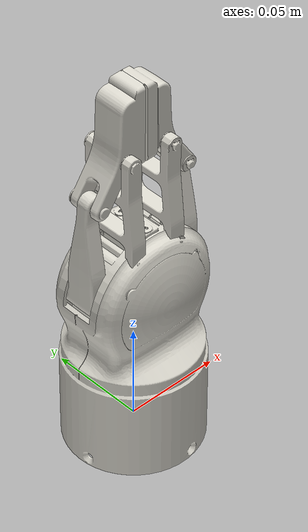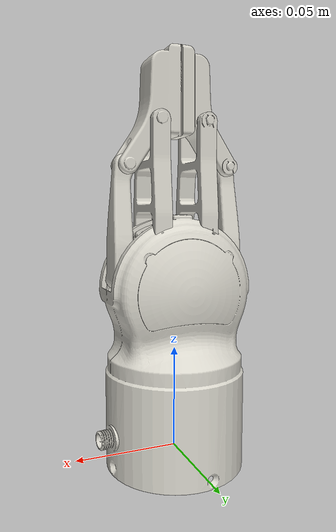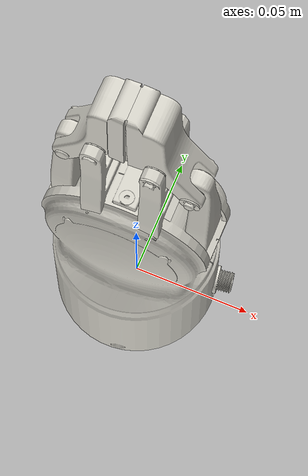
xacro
<?xml version="1.0"?>
<!-- Note: Do NOT add a 'world' link here - it causes crashes in MoveIt Setup Assistant on WSL.
     Instead, use a virtual_joint in the SRDF to attach the robot to the world frame. -->
<robot xmlns:xacro="http://www.ros.org/wiki/xacro" name="lebai_gripper">
	<xacro:include filename="$(find lebai_lm3_support)/urdf/gripper_macro.xacro"/>
  	<xacro:lebai_gripper prefix=""/>
</robot>

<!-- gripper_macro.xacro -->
<robot xmlns:xacro="http://ros.org/wiki/xacro">
<!-- Include all common properties -->
  <xacro:include filename="$(find lebai_resources)/urdf/common_colours.xacro"/>
  <xacro:include filename="$(find lebai_resources)/urdf/common_constants.xacro"/>
  <xacro:include filename="$(find lebai_resources)/urdf/common_materials.xacro"/>
<!-- Robot DH parameters define joint-->
<!-- Robot visual and  collision dir-->
<xacro:property name="gripper_visual_base" value="package://lebai_lm3_support/meshes/gripper/visual/gripper_base.gltf" />
<xacro:property name="gripper_visual_link1" value="package://lebai_lm3_support/meshes/gripper/visual/gripper_link1.gltf" />
<xacro:property name="gripper_visual_link2" value="package://lebai_lm3_support/meshes/gripper/visual/gripper_link2.gltf" />
<xacro:property name="gripper_visual_link_finger" value="package://lebai_lm3_support/meshes/gripper/visual/gripper_link_finger.dagltfe" />

<xacro:property name="gripper_collision_base" value="package://lebai_lm3_support/meshes/gripper/collision/gripper_base.gltf" />
<xacro:property name="gripper_collision_link1" value="package://lebai_lm3_support/meshes/gripper/collision/gripper_link1.gltf" />
<xacro:property name="gripper_collision_link2" value="package://lebai_lm3_support/meshes/gripper/collision/gripper_link2.gltf" />
<xacro:property name="gripper_collision_link_finger" value="package://lebai_lm3_support/meshes/gripper/collision/gripper_link_finger.gltf" />

<xacro:macro name="lebai_gripper" params="prefix">

<!-- link list -->
<link name="${prefix}gripper_base_link">
	<visual>
		<geometry>
			<mesh filename="${gripper_visual_base}"/>
		</geometry>
    	<xacro:material_white name="white"/>
	</visual>
	<collision>
		<geometry>
			<mesh filename="${gripper_collision_base}" />
		</geometry>
	</collision>
</link>
<link name="${prefix}gripper_r_link1">
	<visual>
		<geometry>
			<mesh filename="${gripper_visual_link1}" />
		</geometry>
    	<xacro:material_white name="white"/>
	</visual>
	<collision>
		<geometry>
			<mesh filename="${gripper_collision_link1}" />
		</geometry>
	</collision>
</link>
<link name="${prefix}gripper_r_link2">
	<visual>
		<geometry>
			<mesh filename="${gripper_visual_link2}" />
		</geometry>
    	<xacro:material_white name="white"/>
	</visual>
	<collision>
		<geometry>
			<mesh filename="${gripper_collision_link2}" />
		</geometry>
	</collision>
</link>
<link name="${prefix}gripper_r_link_finger">
	<visual>
		<geometry>
			<mesh filename="${gripper_visual_link_finger}" />
		</geometry>
    	<xacro:material_white name="white"/>
	</visual>
	<collision>
		<geometry>
			<mesh filename="${gripper_collision_link_finger}" />
		</geometry>
	</collision>
</link>

<link name="${prefix}gripper_l_link1">
	<visual>
		<geometry>
			<mesh filename="${gripper_visual_link1}" />
		</geometry>
    	<xacro:material_white name="white"/>
	</visual>
	<collision>
		<geometry>
			<mesh filename="${gripper_collision_link1}" />
		</geometry>
	</collision>
</link>

<link name="${prefix}gripper_l_link2">
	<visual>
		<geometry>
			<mesh filename="${gripper_visual_link2}" />
		</geometry>
    	<xacro:material_white name="white"/>
	</visual>
	<collision>
		<geometry>
			<mesh filename="${gripper_collision_link2}" />
		</geometry>
	</collision>
</link>

<link name="${prefix}gripper_l_link_finger">
	<visual>
		<geometry>
			<mesh filename="${gripper_visual_link_finger}" />
		</geometry>
    	<xacro:material_white name="white"/>
	</visual>
	<collision>
		<geometry>
			<mesh filename="${gripper_collision_link_finger}" />
		</geometry>
	</collision>
</link>

<link name="${prefix}gripper_tip" />

<!-- end of link list -->

<!-- joint list -->
<joint name="${prefix}gripper_r_joint1" type="revolute">
	<parent link="${prefix}gripper_base_link"/>
	<child link="${prefix}gripper_r_link1"/>
	<origin xyz="0.025 0.0 0.0856" rpy="${PI_2} 0.0 ${PI}"/>
	<axis xyz="0 0 1" />
	<limit lower="-10.0" upper="10.0" effort="100" velocity="1" />
</joint>
<joint name="${prefix}gripper_r_joint2" type="revolute">
	<parent link="${prefix}gripper_base_link"/>
	<child link="${prefix}gripper_r_link2"/>
        <origin xyz="0.0115 0.0 0.1056" rpy="${PI_2} 0 0"/>
	<axis xyz="0 0 1" />
	<limit lower="-10.0" upper="10.0" effort="100" velocity="1" />
</joint>
<joint name="${prefix}gripper_r_joint_finger" type="revolute">
	<parent link="${prefix}gripper_r_link2"/>
	<child link="${prefix}gripper_r_link_finger"/>
        <origin xyz="0.0 0.053 0.0" rpy="${PI} 0 ${PI}"/>
	<axis xyz="0 0 1" />
	<limit lower="-10" upper="10" effort="100" velocity="1" />
</joint>
<joint name="${prefix}gripper_l_joint1" type="revolute">
	<parent link="${prefix}gripper_base_link"/>
	<child link="${prefix}gripper_l_link1"/>
	<origin xyz="-0.025 0.0 0.0856" rpy="${PI_2} 0.0 0.0"/>
	<axis xyz="0 0 1" />
	<limit lower="-10.0" upper="10.0" effort="100" velocity="1" />
</joint>
<joint name="${prefix}gripper_l_joint2" type="revolute">
	<parent link="${prefix}gripper_base_link"/>
	<child link="${prefix}gripper_l_link2"/>
        <origin xyz="-0.0115 0.0 0.1056" rpy="${PI_2} 0 ${PI}"/>
	<axis xyz="0 0 1" />
	<limit lower="-10.0" upper="10.0" effort="100" velocity="1" />
</joint>

<joint name="${prefix}gripper_l_joint_finger" type="revolute">
	<parent link="${prefix}gripper_l_link2"/>
	<child link="${prefix}gripper_l_link_finger"/>
        <origin xyz="0.0 0.053 0.0" rpy="${PI} 0 ${PI}"/>
	<axis xyz="0 0 1" />
	<limit lower="-10" upper="10" effort="100" velocity="1" />
</joint>

<joint name="${prefix}gripper_joint_tip" type="fixed">
      <parent link="${prefix}gripper_l_link_finger"/>
      <child link="${prefix}gripper_tip"/>
      <origin xyz="0.0115 0.0 0.0" rpy="0.0 0.0 0.0"/>
</joint>

</xacro:macro>
</robot>

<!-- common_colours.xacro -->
<robot xmlns:xacro="http://ros.org/wiki/xacro">

  <!-- common colours define for lebai robot -->
  <xacro:property name="color_yellow"   value="0.96 0.76 0.13 1.0" />
  <xacro:property name="color_white"    value="0.86 0.85 0.81 1.0" />
  <xacro:property name="color_grey"     value="0.34 0.35 0.36 1.0" />

  <xacro:property name="color_blue"    value="0.0 0.0 1.0 1.0" />
  <xacro:property name="color_black"    value="0.15 0.15 0.15 1.0" />
  <xacro:property name="color_greyish"  value="0.75 0.75 0.75 1.0" />
  <xacro:property name="color_green"    value="${  0/255} ${155/255} ${ 70/255} 1.0" />

</robot>

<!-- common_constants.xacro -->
<robot xmlns:xacro="http://ros.org/wiki/xacro">

  <!-- Global constants for lebai robot -->
<xacro:property name="PI" value="3.1415926535897931"/>
<xacro:property name="PI_2" value="1.570796327"/>
</robot>

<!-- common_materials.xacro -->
<robot xmlns:xacro="http://ros.org/wiki/xacro">
  <xacro:include filename="$(find lebai_resources)/urdf/common_colours.xacro"/>

  <xacro:macro name="material_yellow" params="name">
    <material name="${name}">
      <color rgba="${color_yellow}"/>
    </material>
  </xacro:macro>

  <xacro:macro name="material_white" params="name">
    <material name="${name}">
      <color rgba="${color_white}"/>
    </material>
  </xacro:macro>

  <xacro:macro name="material_grey" params="name">
    <material name="${name}">
      <color rgba="${color_grey}"/>
    </material>
  </xacro:macro>

  <xacro:macro name="material_blue" params="name">
    <material name="${name}">
      <color rgba="${color_blue}"/>
    </material>
  </xacro:macro>

  <xacro:macro name="material_black" params="name">
    <material name="${name}">
      <color rgba="${color_black}"/>
    </material>
  </xacro:macro>

  <xacro:macro name="material_greyish" params="name">
    <material name="${name}">
      <color rgba="${color_greyish}"/>
    </material>
  </xacro:macro>

  <xacro:macro name="material_green" params="name">
    <material name="${name}">
      <color rgba="${color_green}"/>
    </material>
  </xacro:macro>

</robot>
